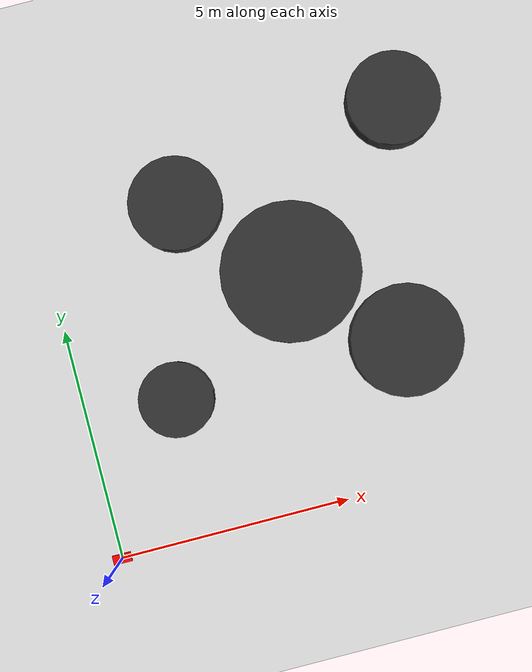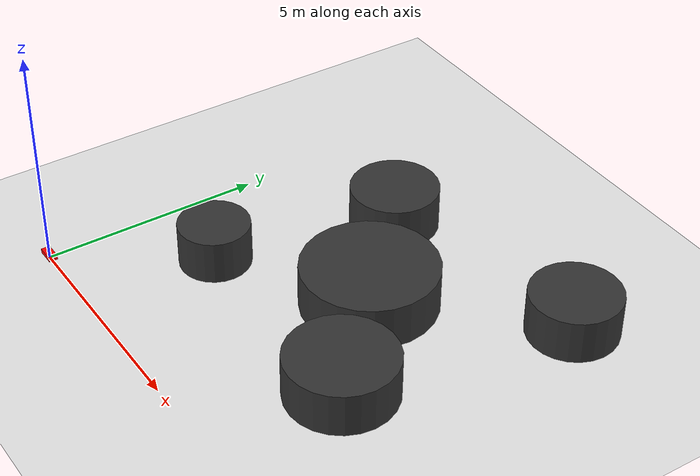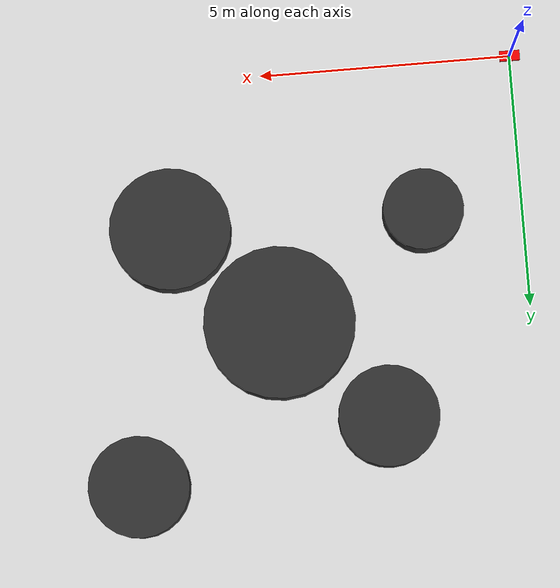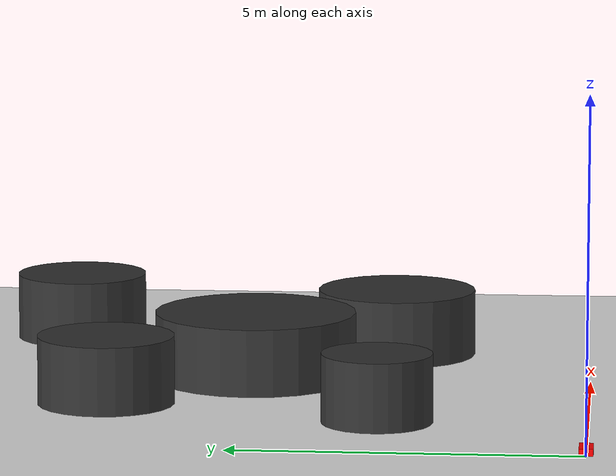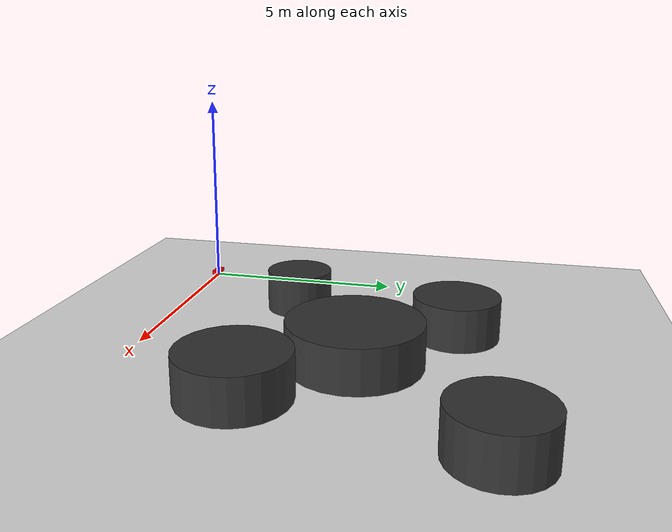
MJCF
<mujoco>
  <worldbody>
    <light diffuse=".5 .5 .5" pos="0 0 3" dir="0 0 -1"/>
    <geom type="plane" size="15 15 0.1" rgba=".9 .9 .9 1"/>

    <body name="car" pos="0 0 0.1">
      <joint name="x" type="slide" axis="1 0 0"/>
      <joint name="y" type="slide" axis="0 1 0"/>
      <joint name="yaw" type="hinge" axis="0 0 1"/>
      <geom type="box" size="0.2 0.1 0.05" rgba="1 0 0 1"/>
    </body>

    <geom type="cylinder" pos="5.0 5.0 0.5" size="1.5 0.5" rgba="0.2 0.2 0.2 1"/>
    <geom type="cylinder" pos="3.0 7.0 0.5" size="1.0 0.5" rgba="0.2 0.2 0.2 1"/>
    <geom type="cylinder" pos="7.0 3.0 0.5" size="1.2 0.5" rgba="0.2 0.2 0.2 1"/>
    <geom type="cylinder" pos="8.0 8.0 0.5" size="1.0 0.5" rgba="0.2 0.2 0.2 1"/>
    <geom type="cylinder" pos="2.0 3.0 0.5" size="0.8 0.5" rgba="0.2 0.2 0.2 1"/>
  </worldbody>
</mujoco>
